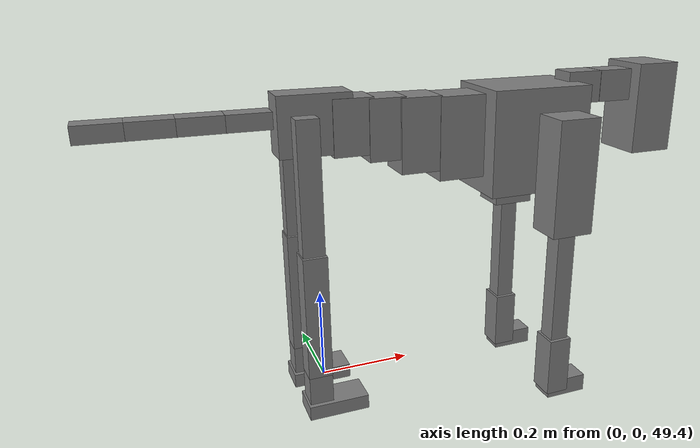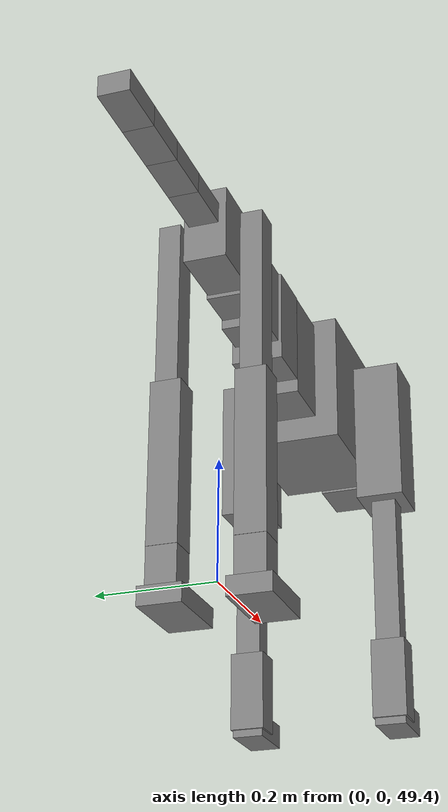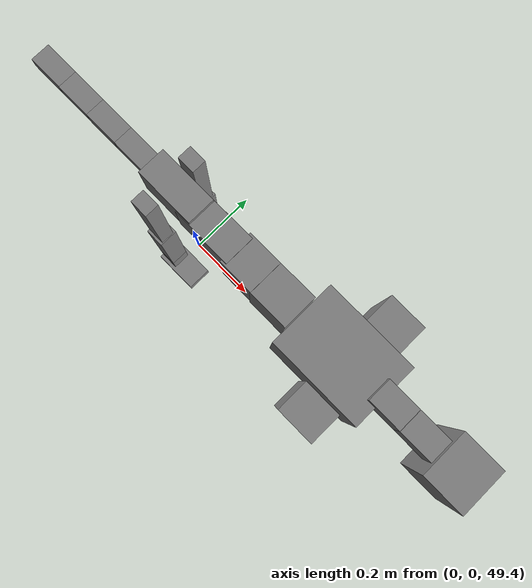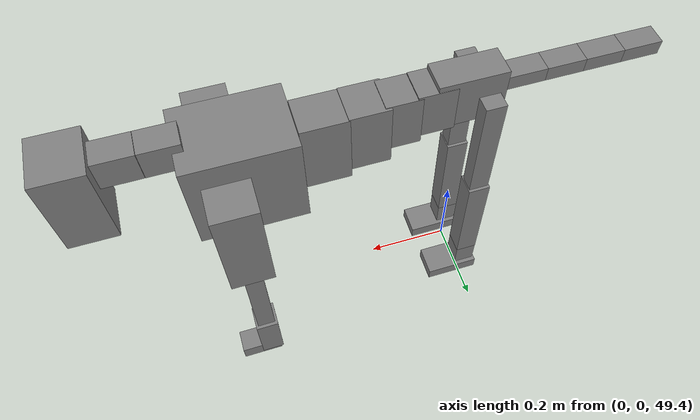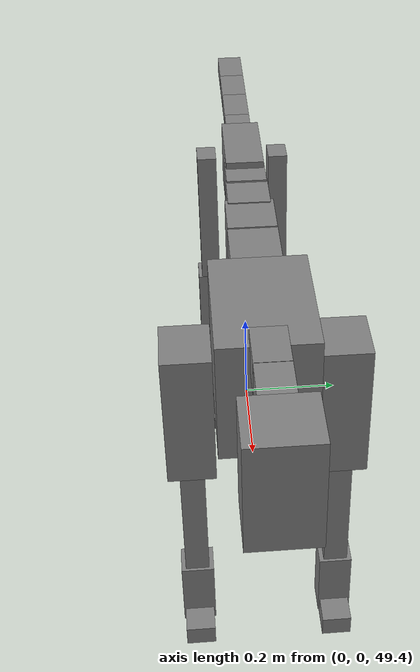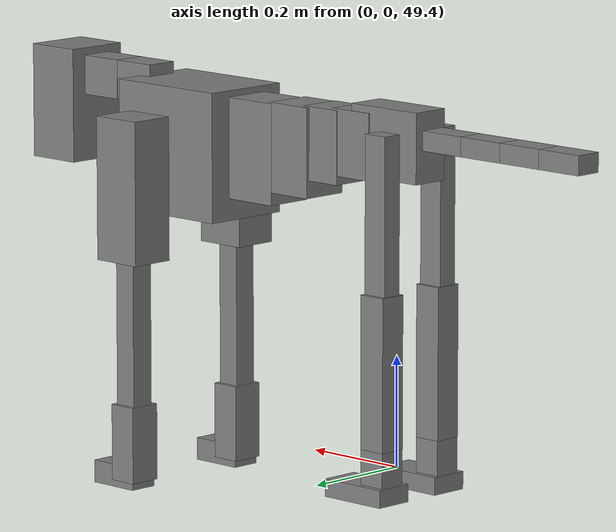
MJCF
<mujoco model="dog">

    <default>
        <joint armature="0.02" stiffness="1" damping="0.2" limited="true"/>
        <geom condim="3" friction="1 0.05 0.05" margin="0.01"/>
        <motor ctrllimited="true" ctrlrange="-1.0 1.0" forcelimited="true" gear="50"/>
    </default>

    <compiler inertiafromgeom="true" angle="radian"/>

    <option timestep="0.016" iterations="50" tolerance="1e-10" solver="Newton" jacobian="dense" cone="pyramidal"/>

    <size nconmax="20000" njmax="60000" nstack="5000000"/>
    <visual>
        <map force="0.1" zfar="30"/>
        <rgba haze="0.15 0.25 0.35 1"/>
        <quality shadowsize="2048"/>
        <global offwidth="800" offheight="800"/>
    </visual>

    <asset>
        <texture type="skybox" builtin="gradient" rgb1="0.3 0.5 0.7" rgb2="0 0 0" width="512" height="512"/>
        <texture name="texplane" type="2d" builtin="checker" rgb1=".2 .3 .4" rgb2=".1 0.15 0.2" width="512" height="512"
                 mark="cross" markrgb=".8 .8 .8"/>
        <texture name="texgeom" type="cube" builtin="flat" mark="cross" width="127" height="1278" rgb1="0.8 0.6 0.4"
                 rgb2="0.8 0.6 0.4" markrgb="1 1 1" random="0.01"/>

        <material name="matplane" reflectance="0.3" texture="texplane" texrepeat="1 1" texuniform="true"/>
        <material name="matgeom" texture="texgeom" texuniform="true" rgba="0.8 0.6 .4 1"/>
    </asset>

    <worldbody>
        <geom name="floor" pos="0 0 0" size="0 0 .25" type="plane" material="matplane" condim="3"/>

        <light directional="false" diffuse=".2 .2 .2" specular="0 0 0" pos="0 0 5" dir="0 0 -1" castshadow="false"/>
        <light mode="targetbodycom" target="torso" directional="false" diffuse=".8 .8 .8" specular="0.3 0.3 0.3"
               pos="0 0 4.0" dir="0 0 -1"/>

        <body name="root" pos="0 0 50">
            <freejoint name="root_1"/>
            <geom type="box" pos="0 0 -0.02" size="0.0774  0.0358  0.063" density="2030"/>

            <body name="spine1" pos="0.054 0 0">
                <joint name="spine1_y" axis="0 1 0" range="0 0.7" limited="true"/>
                <geom type="box" pos="0.02375 0 -0.03" size="0.04375  0.0375  0.05985" density="2030"/>

                <body name="spine2" pos="0.0612 0 0">
                    <joint name="spine2_y" axis="0 1 0" range="-0.15 0.15" limited="true"/>
                    <geom type="box" pos="0.03555  0  -0.04" size="0.04055  0.039  0.06615" density="2030"/>

                    <body name="spine3" pos="0.0730 0 0">
                        <joint name="spine3_y" axis="0 1 0" range="-0.15 0.15" limited="true"/>
                        <geom type="box" pos="0.03555  0  -0.057" size="0.04555  0.0445  0.081" density="2030"/>

                        <body name="spine4" pos="0.0780 0 0">
                            <joint name="spine4_y" axis="0 1 0" range="-0.15 0.15" limited="true"/>
                            <geom type="box" pos="0.05265  0  -0.07" size="0.05265  0.045  0.09135" density="2030"/>

                            <body name="torso" pos="0.1082 0 0">
                                <joint name="torso_y" axis="0 1 0" range="-0.15 0.15" limited="true"/>
                                <geom type="box" pos="0.11925  0  -0.085" size="0.11925  0.085  0.11745"
                                      density="2030"/>

                                <body name="neck1" pos="0.2160  0   0.0180">
                                    <joint name="neck1_y" axis="0 1 0" range="-1.2  -1" limited="true"/>
                                    <geom type="box" pos="0.0423  0  0" size="0.0423  0.03  0.036" density="2325"/>

                                    <body name="neck2" pos="0.0853  0  0">
                                        <joint name="neck2_y" axis="0 1 0" range="0.1  0" limited="true"/>
                                        <geom type="box" pos="0.0423  0  0" size="0.0423  0.03  0.036" density="2325"/>

                                        <body name="head" pos="0.0853  0  0">
                                            <joint name="head_y" axis="0 1 0" range="-0.3  -0.2" limited="true"/>
                                            <geom type="box" pos="0.0531  0  -0.055" size="0.0531  0.06  0.1044"
                                                  density="4030"/>

                                        </body>
                                    </body>
                                </body>

                                <body name="front_shoulder" pos="0.156  0   -0.0480">
                                    <joint name="front_shoulder_y" axis="0 1 0" range="-1 1.5" limited="true"/>
                                    <geom type="box" pos="0 0.13 -0.1040" size="0.0492  0.0421  0.1306" density="1158"/>
                                    <geom type="box" pos="0 -0.13 -0.1040" size="0.0492  0.0421  0.1306"
                                          density="1158"/>

                                    <body name="front_elbow" pos="0  0  -0.2079">
                                        <joint name="front_elbow_y" axis="0 1 0" range="-2 0" limited="true"/>
                                        <geom type="box" pos="0 0.13 -0.1519" size="0.0215  0.0219  0.1519"
                                              density="1081"/>
                                        <geom type="box" pos="0 -0.13 -0.1519" size="0.0215  0.0219  0.1519"
                                              density="1081"/>

                                        <body name="front_wrist" pos="0  0  -0.3037">
                                            <joint name="front_wrist_y" axis="0 1 0" range="-0.2 0" limited="true"/>
                                            <geom type="box" pos="0 0.13 -0.0566" size="0.0272  0.0302  0.0697"
                                                  density="1664"/>
                                            <geom type="box" pos="0 -0.13 -0.0566" size="0.0272  0.0302  0.0697"
                                                  density="1664"/>

                                            <body name="front_finger_end" pos="0  0  -0.1131">
                                                <joint name="front_finger_y" axis="0 1 0" range="-0.4 1"
                                                       limited="true"/>
                                                <geom type="box" pos="0.0272  0.13  -0.0056"
                                                      size="0.0498  0.0272  0.0206" density="1515"/>
                                                <geom type="box" pos="0.0272  -0.13  -0.0056"
                                                      size="0.0498  0.0272  0.0206" density="1515"/>

                                            </body>

                                        </body>
                                    </body>
                                </body>

                            </body>
                        </body>
                    </body>
                </body>
            </body>

            <body name="back_hip" pos="-0.03 0 -0.018">
                <joint name="back_hip_y" axis="0 1 0" range="-1.5 0.3" limited="true"/>
                <geom type="box" pos="0 0.07 -0.1373" size="0.0236  0.0185  0.1601" density="1154"/>
                <geom type="box" pos="0 -0.07 -0.1373" size="0.0236  0.0185  0.1601" density="1154"/>

                <body name="back_knee" pos="0  0  -0.2745">
                    <joint name="back_knee_y" axis="0 1 0" range="0 2.8" limited="true"/>
                    <geom type="box" pos="0 0.07 -0.1216" size="0.0260  0.0256  0.1371" density="1227"/>
                    <geom type="box" pos="0 -0.07 -0.1216" size="0.0260  0.0256  0.1371" density="1227"/>

                    <body name="back_ankle" pos="0  0  -0.2432">
                        <joint name="back_ankle_y" axis="0 1 0" range="-2.2 0" limited="true"/>
                        <geom type="box" pos="0 0.07 -0.0468" size="0.0255  0.0255  0.0581" density="1284"/>
                        <geom type="box" pos="0 -0.07 -0.0468" size="0.0255  0.0255  0.0581" density="1284"/>

                        <body name="back_toe_end" pos="0  0  -0.0936">
                            <joint name="back_toe_y" axis="0 1 0" range="-0.4 1" limited="true"/>
                            <geom type="box" pos="0.0361  0.07  -0.0009" size="0.0661  0.0361  0.0159" density="1515"/>
                            <geom type="box" pos="0.0361  -0.07  -0.0009" size="0.0661  0.0361  0.0159" density="1515"/>

                        </body>
                    </body>
                </body>
            </body>

            <body name="tail1" pos="-0.074 0 -0.006">
                <joint name="tail1_y" axis="0 1 0" range="-0.2 0.2" limited="true"/>
                <geom type="box" pos="-0.0536  0  0" size="0.045  0.025  0.0175" density="1587"/>

                <body name="tail2" pos="-0.09 0 0">
                    <joint name="tail2_y" axis="0 1 0" range="-0.2 0.2" limited="true"/>
                    <geom type="box" pos="-0.0536  0  0" size="0.045  0.025  0.0175" density="1587"/>

                    <body name="tail3" pos="-0.09 0 0">
                        <joint name="tail3_y" axis="0 1 0" range="-0.2 0.2" limited="true"/>
                        <geom type="box" pos="-0.0536  0  0" size="0.045  0.025  0.0175" density="1587"/>

                        <body name="tail4" pos="-0.09 0 0">
                            <joint name="tail4_y" axis="0 1 0" range="-0.2 0.2" limited="true"/>
                            <geom type="box" pos="-0.0536  0  0" size="0.045  0.025  0.0175" density="1587"/>

                        </body>
                    </body>
                </body>
            </body>
        </body>
    </worldbody>

    <actuator>
        <motor joint="spine1_y" forcerange="-150 150     "/>
        <motor joint="spine2_y" forcerange="-150 150     "/>
        <motor joint="spine3_y" forcerange="-150 150     "/>
        <motor joint="spine4_y" forcerange="-150 150     "/>
        <motor joint="torso_y" forcerange="-150 150     "/>
        <motor joint="neck1_y" forcerange="-100 100       "/>
        <motor joint="neck2_y" forcerange="-100 100       "/>
        <motor joint="head_y" forcerange="-150 150       "/>
        <motor joint="front_shoulder_y" forcerange="-185.30 195.04"/>
        <motor joint="front_elbow_y" forcerange="-115.12 144.51"/>
        <motor joint="front_wrist_y" forcerange="-100.41 140.94"/>
        <motor joint="front_finger_y" forcerange="-57.88 47.07"/>
        <motor joint="back_hip_y" forcerange="-234.21 212.91"/>
        <motor joint="back_knee_y" forcerange="-345.42 227.24"/>
        <motor joint="back_angle_y" forcerange="-158.87 149.00"/>
        <motor joint="back_toe_y" forcerange="-116.51 92.14"/>
        <motor joint="tail1_y" forcerange="-50 50     "/>
        <motor joint="tail2_y" forcerange="-50 50     "/>
        <motor joint="tail3_y" forcerange="-50 50     "/>
        <motor joint="tail4_y" forcerange="-50 50     "/>
    </actuator>
</mujoco>
